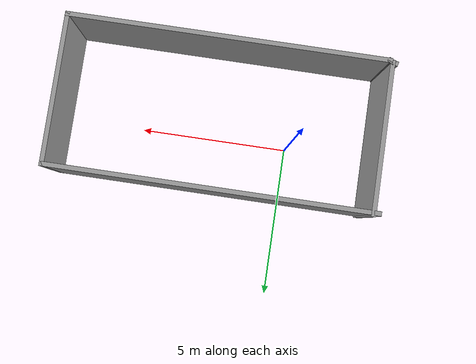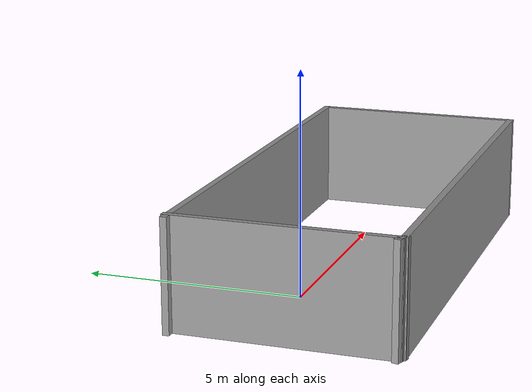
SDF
<?xml version='1.0'?>
<sdf version='1.7'>
  <model name='house'>
    <pose>2.33321 -0.572292 0 0 -0 0</pose>
    <link name='Wall_28'>
      <collision name='Wall_28_Collision'>
        <geometry>
          <box>
            <size>10.5 0.15 2.5</size>
          </box>
        </geometry>
        <pose>0 0 1.25 0 -0 0</pose>
      </collision>
      <visual name='Wall_28_Visual'>
        <pose>0 0 1.25 0 -0 0</pose>
        <geometry>
          <box>
            <size>10.5 0.15 2.5</size>
          </box>
        </geometry>
        <material>
          <script>
            <uri>file://media/materials/scripts/gazebo.material</uri>
            <name>Gazebo/Grey</name>
          </script>
          <ambient>1 1 1 1</ambient>
        </material>
        <meta>
          <layer>0</layer>
        </meta>
      </visual>
      <pose>0.125 -2.43627 0 0 -0 0</pose>
    </link>
    <link name='Wall_29'>
      <collision name='Wall_29_Collision'>
        <geometry>
          <box>
            <size>5 0.15 2.5</size>
          </box>
        </geometry>
        <pose>0 0 1.25 0 -0 0</pose>
      </collision>
      <visual name='Wall_29_Visual'>
        <pose>0 0 1.25 0 -0 0</pose>
        <geometry>
          <box>
            <size>5 0.15 2.5</size>
          </box>
        </geometry>
        <material>
          <script>
            <uri>file://media/materials/scripts/gazebo.material</uri>
            <name>Gazebo/Grey</name>
          </script>
          <ambient>1 1 1 1</ambient>
        </material>
        <meta>
          <layer>0</layer>
        </meta>
      </visual>
      <pose>5.3 -0.011274 0 0 -0 1.5708</pose>
    </link>
    <link name='Wall_30'>
      <collision name='Wall_30_Collision'>
        <geometry>
          <box>
            <size>10.75 0.15 2.5</size>
          </box>
        </geometry>
        <pose>0 0 1.25 0 -0 0</pose>
      </collision>
      <visual name='Wall_30_Visual'>
        <pose>0 0 1.25 0 -0 0</pose>
        <geometry>
          <box>
            <size>10.75 0.15 2.5</size>
          </box>
        </geometry>
        <material>
          <script>
            <uri>file://media/materials/scripts/gazebo.material</uri>
            <name>Gazebo/Grey</name>
          </script>
          <ambient>1 1 1 1</ambient>
        </material>
        <meta>
          <layer>0</layer>
        </meta>
      </visual>
      <pose>-0 2.41373 0 0 -0 3.14159</pose>
    </link>
    <link name='Wall_32'>
      <collision name='Wall_32_Collision'>
        <geometry>
          <box>
            <size>0.25 0.15 2.5</size>
          </box>
        </geometry>
        <pose>0 0 1.25 0 -0 0</pose>
      </collision>
      <visual name='Wall_32_Visual'>
        <pose>0 0 1.25 0 -0 0</pose>
        <geometry>
          <box>
            <size>0.25 0.15 2.5</size>
          </box>
        </geometry>
        <material>
          <script>
            <uri>file://media/materials/scripts/gazebo.material</uri>
            <name>Gazebo/Grey</name>
          </script>
          <ambient>1 1 1 1</ambient>
        </material>
        <meta>
          <layer>0</layer>
        </meta>
      </visual>
      <pose>-5.0933 -2.41127 0 0 -0 2.61799</pose>
    </link>
    <link name='Wall_33'>
      <collision name='Wall_33_Collision'>
        <geometry>
          <box>
            <size>0.15 0.15 2.5</size>
          </box>
        </geometry>
        <pose>0 0 1.25 0 -0 0</pose>
      </collision>
      <visual name='Wall_33_Visual'>
        <pose>0 0 1.25 0 -0 0</pose>
        <geometry>
          <box>
            <size>0.15 0.15 2.5</size>
          </box>
        </geometry>
        <material>
          <script>
            <uri>file://media/materials/scripts/gazebo.material</uri>
            <name>Gazebo/Grey</name>
          </script>
          <ambient>1 1 1 1</ambient>
        </material>
        <meta>
          <layer>0</layer>
        </meta>
      </visual>
      <pose>-5.1366 -2.38627 0 0 -0 0</pose>
    </link>
    <link name='Wall_34'>
      <collision name='Wall_34_Collision'>
        <geometry>
          <box>
            <size>0.25 0.15 2.5</size>
          </box>
        </geometry>
        <pose>0 0 1.25 0 -0 0</pose>
      </collision>
      <visual name='Wall_34_Visual'>
        <pose>0 0 1.25 0 -0 0</pose>
        <geometry>
          <box>
            <size>0.25 0.15 2.5</size>
          </box>
        </geometry>
        <material>
          <script>
            <uri>file://media/materials/scripts/gazebo.material</uri>
            <name>Gazebo/Grey</name>
          </script>
          <ambient>1 1 1 1</ambient>
        </material>
        <meta>
          <layer>0</layer>
        </meta>
      </visual>
      <pose>-5.1849 -2.37333 0 0 -0 2.87979</pose>
    </link>
    <link name='Wall_36'>
      <collision name='Wall_36_Collision'>
        <geometry>
          <box>
            <size>5 0.15 2.5</size>
          </box>
        </geometry>
        <pose>0 0 1.25 0 -0 0</pose>
      </collision>
      <visual name='Wall_36_Visual'>
        <pose>0 0 1.25 0 -0 0</pose>
        <geometry>
          <box>
            <size>5 0.15 2.5</size>
          </box>
        </geometry>
        <material>
          <script>
            <uri>file://media/materials/scripts/gazebo.material</uri>
            <name>Gazebo/Grey</name>
          </script>
          <ambient>1 1 1 1</ambient>
        </material>
        <meta>
          <layer>0</layer>
        </meta>
      </visual>
      <pose>-5.1366 0.038726 0 0 -0 1.5708</pose>
    </link>
    <static>1</static>
  </model>
</sdf>
